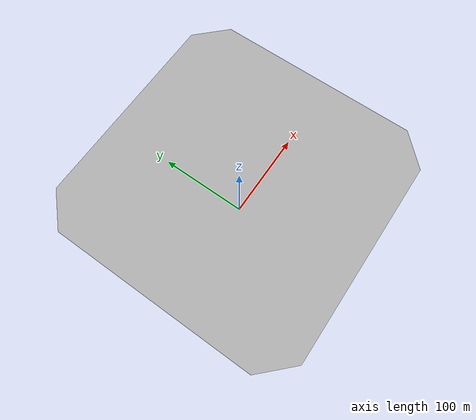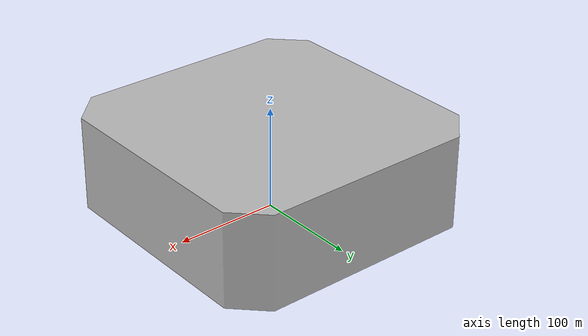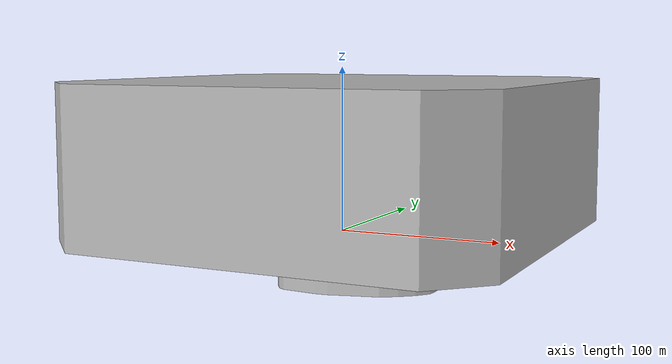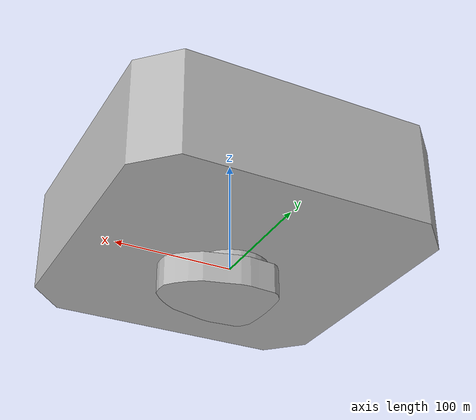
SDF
<?xml version="1.0" ?>
<sdf version="1.8">
  <model name="turtlebot3" canonical_link="base_link">
    <pose>0 0 0.05 0 0 0</pose>

    <link name="base_link">
      <inertial>
        <mass>1.3</mass>
        <inertia>
          <ixx>0.008</ixx><iyy>0.008</iyy><izz>0.008</izz>
        </inertia>
      </inertial>
      <visual name="body">
        <pose>-0.064 0 0 0 0 0</pose>
        <geometry>
          <mesh>
            <uri>file:///opt/ros/humble/share/turtlebot3_gazebo/models/turtlebot3_common/meshes/waffle_pi_base.dae</uri>
            <scale>1 1 1</scale>
          </mesh>
        </geometry>
      </visual>
      <collision name="body_c">
        <pose>0 0 0.07 0 0 0</pose>
        <geometry><box><size>0.266 0.266 0.094</size></box></geometry>
      </collision>
    </link>

    <link name="left_wheel">
      <pose>0 0.144 0.023 -1.5707 0 0</pose>
      <inertial>
        <mass>0.05</mass>
        <inertia><ixx>0.0001</ixx><iyy>0.0001</iyy><izz>0.0001</izz></inertia>
      </inertial>
      <visual name="v">
        <geometry>
          <mesh>
            <uri>file:///opt/ros/humble/share/turtlebot3_gazebo/models/turtlebot3_common/meshes/tire.dae</uri>
          </mesh>
        </geometry>
      </visual>
      <collision name="c">
        <geometry><cylinder><radius>0.033</radius><length>0.018</length></cylinder></geometry>
        <surface><friction><ode><mu>1.0</mu><mu2>1.0</mu2></ode></friction></surface>
      </collision>
    </link>

    <link name="right_wheel">
      <pose>0 -0.144 0.023 -1.5707 0 0</pose>
      <inertial>
        <mass>0.05</mass>
        <inertia><ixx>0.0001</ixx><iyy>0.0001</iyy><izz>0.0001</izz></inertia>
      </inertial>
      <visual name="v">
        <geometry>
          <mesh>
            <uri>file:///opt/ros/humble/share/turtlebot3_gazebo/models/turtlebot3_common/meshes/tire.dae</uri>
          </mesh>
        </geometry>
      </visual>
      <collision name="c">
        <geometry><cylinder><radius>0.033</radius><length>0.018</length></cylinder></geometry>
        <surface><friction><ode><mu>1.0</mu><mu2>1.0</mu2></ode></friction></surface>
      </collision>
    </link>

    <link name="caster_back">
      <pose>-0.177 0 -0.005 0 0 0</pose>
      <inertial>
        <mass>0.005</mass>
        <inertia><ixx>0.00001</ixx><iyy>0.00001</iyy><izz>0.00001</izz></inertia>
      </inertial>
      <visual name="v">
        <geometry><sphere><radius>0.005</radius></sphere></geometry>
        <material><ambient>0.3 0.3 0.3 1</ambient></material>
      </visual>
      <collision name="c">
        <geometry><sphere><radius>0.005</radius></sphere></geometry>
        <surface><friction><ode><mu>0.0</mu><mu2>0.0</mu2></ode></friction></surface>
      </collision>
    </link>

    <link name="lidar_link">
      <pose>-0.064 0 0.122 0 0 0</pose>
      <inertial>
        <mass>0.114</mass>
        <inertia><ixx>0.0001</ixx><iyy>0.0001</iyy><izz>0.0001</izz></inertia>
      </inertial>
      <visual name="v">
        <geometry>
          <mesh>
            <uri>file:///opt/ros/humble/share/turtlebot3_gazebo/models/turtlebot3_common/meshes/lds.dae</uri>
          </mesh>
        </geometry>
      </visual>
      <sensor name="lidar" type="gpu_lidar">
        <topic>scan</topic>
        <update_rate>10</update_rate>
        <ray>
          <scan>
            <horizontal>
              <samples>360</samples><resolution>1</resolution>
              <min_angle>-3.14159</min_angle><max_angle>3.14159</max_angle>
            </horizontal>
          </scan>
          <range><min>0.12</min><max>3.5</max><resolution>0.015</resolution></range>
        </ray>
        <always_on>1</always_on>
        <visualize>true</visualize>
        <gz_frame_id>lidar_link</gz_frame_id>
      </sensor>
    </link>

    <joint name="left_wheel_joint" type="revolute">
      <parent>base_link</parent>
      <child>left_wheel</child>
      <axis><xyz>0 1 0</xyz><limit><lower>-1e16</lower><upper>1e16</upper></limit></axis>
    </joint>
    <joint name="right_wheel_joint" type="revolute">
      <parent>base_link</parent>
      <child>right_wheel</child>
      <axis><xyz>0 1 0</xyz><limit><lower>-1e16</lower><upper>1e16</upper></limit></axis>
    </joint>
    <joint name="caster_back_joint" type="ball">
      <parent>base_link</parent>
      <child>caster_back</child>
    </joint>
    <joint name="lidar_joint" type="fixed">
      <parent>base_link</parent>
      <child>lidar_link</child>
    </joint>

    <plugin filename="ignition-gazebo-diff-drive-system" name="ignition::gazebo::systems::DiffDrive">
      <left_joint>left_wheel_joint</left_joint>
      <right_joint>right_wheel_joint</right_joint>
      <wheel_separation>0.288</wheel_separation>
      <wheel_radius>0.033</wheel_radius>
      <topic>cmd_vel</topic>
      <odom_topic>odom</odom_topic>
      <frame_id>odom</frame_id>
      <child_frame_id>base_link</child_frame_id>
      <odom_publish_frequency>30</odom_publish_frequency>
    </plugin>

    <plugin filename="ignition-gazebo-joint-state-publisher-system" name="ignition::gazebo::systems::JointStatePublisher">
      <topic>joint_states</topic>
    </plugin>
  </model>
</sdf>
